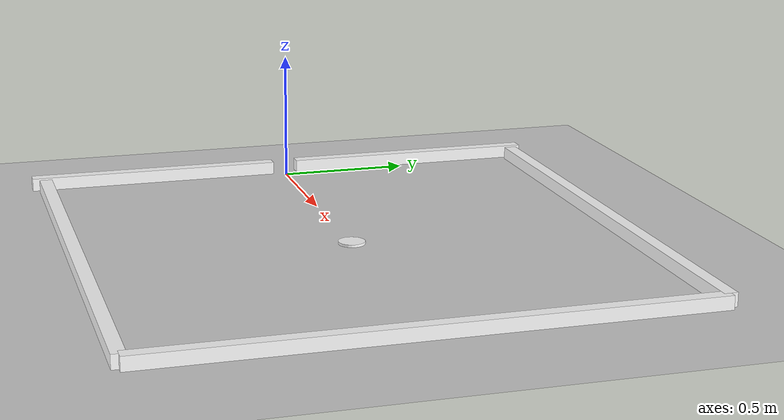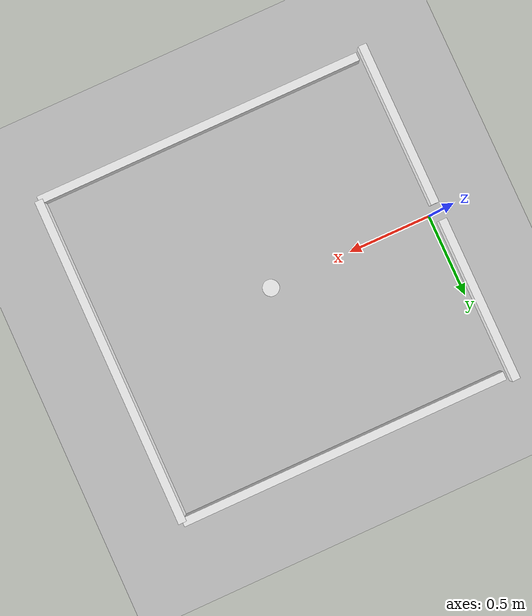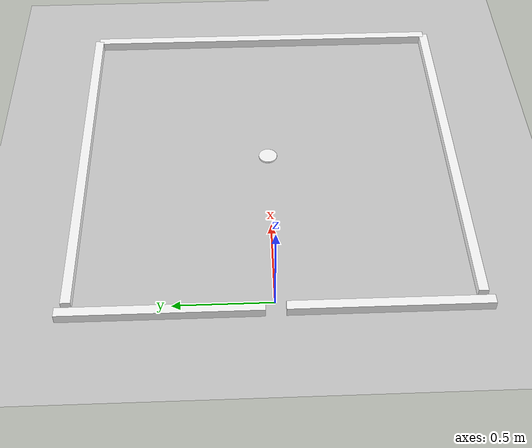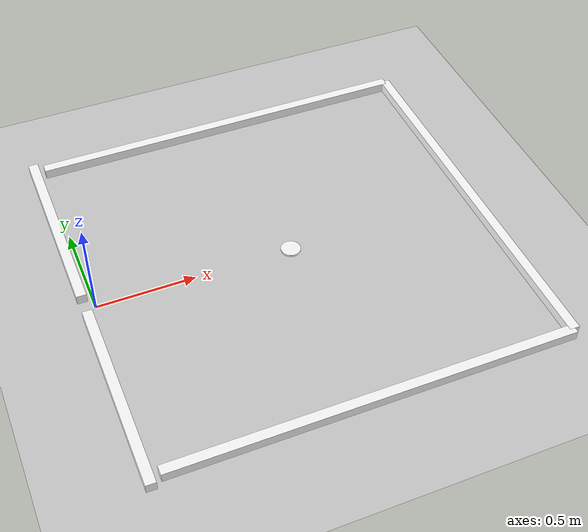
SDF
<sdf version="1.5">
 <world name="default">
  <include><uri>model://sun</uri></include>
  <include><uri>model://ground_plane</uri></include>
  <model name="pack">
   <link name="pack">
    <pose>1 0 0.005 0 0 0</pose>
    <visual name="visual">
     <material><ambient>0 0 0 1</ambient><diffuse>1 1 1 1</diffuse></material>
     <geometry><cylinder><radius>0.05</radius><length>0.01</length></cylinder></geometry>
    </visual>
    <collision name="collision">
     <surface><friction><ode><mu>0</mu><mu2>0</mu2></ode></friction></surface>
     <geometry><cylinder><radius>0.05</radius><length>0.01</length></cylinder></geometry>
    </collision>
   </link>
   <plugin name="pach_push" filename="libpack_push.so"/>
  </model>
  <model name="wall">
   <static>1</static>
   <link name="wall1">
    <pose>1 1 0.025 0 0 0</pose>
    <visual name="visual">
     <material><ambient>0 0 0 1</ambient><diffuse>1 1 1 1</diffuse></material>
     <geometry><box><size>2 0.05 0.05</size></box></geometry>
    </visual>
    <collision name="collision"><geometry><box><size>2 0.05 0.05</size></box></geometry></collision>
   </link>
   <link name="wall2">
    <pose>1 -1 0.025 0 0 0</pose>
    <visual name="visual">
     <material><ambient>0 0 0 1</ambient><diffuse>1 1 1 1</diffuse></material>
     <geometry><box><size>2 0.05 0.05</size></box></geometry>
    </visual>
    <collision name="collision"><geometry><box><size>2 0.05 0.05</size></box></geometry></collision>
   </link>
   <link name="wall3">
    <pose>2 0 0.025 0 0 1.57</pose>
    <visual name="visual">
     <material><ambient>0 0 0 1</ambient><diffuse>1 1 1 1</diffuse></material>
     <geometry><box><size>2 0.05 0.05</size></box></geometry>
    </visual>
    <collision name="collision"><geometry><box><size>2 0.05 0.05</size></box></geometry></collision>
   </link>
   <link name="wall4">
    <pose>-0.05 -0.55 0.025 0 0 1.57</pose>
    <visual name="visual">
     <material><ambient>0 0 0 1</ambient><diffuse>1 1 1 1</diffuse></material>
     <geometry><box><size>1 0.05 0.05</size></box></geometry>
    </visual>
    <collision name="collision"><geometry><box><size>1 0.05 0.05</size></box></geometry></collision>
   </link>
   <link name="wall5">
    <pose>-0.05 0.55 0.025 0 0 1.57</pose>
    <visual name="visual">
     <material><ambient>0 0 0 1</ambient><diffuse>1 1 1 1</diffuse></material>
     <geometry><box><size>1 0.05 0.05</size></box></geometry>
    </visual>
    <collision name="collision"><geometry><box><size>1 0.05 0.05</size></box></geometry></collision>
   </link>
  </model>
 </world>
</sdf>
